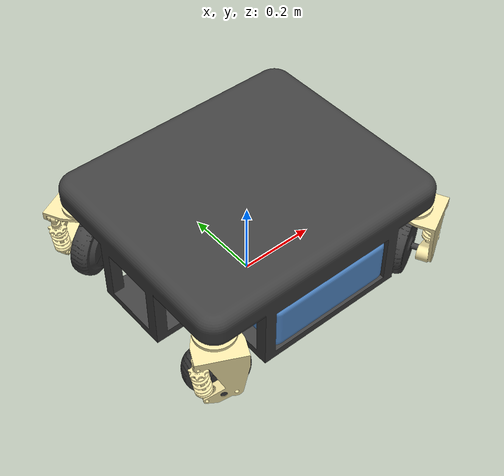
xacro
<?xml version="1.0" ?>
<robot name="robot" xmlns:xacro="http://www.ros.org/wiki/xacro">

<xacro:include filename="$(find odr_description)/urdf/materials.xacro" />
<xacro:include filename="$(find odr_description)/urdf/robot.trans" />
<link name="base_link">
  <inertial>
    <origin xyz="0.0018756816340556987 2.1921707643288239e-16 0.2351040936470249" rpy="0 0 0"/>
    <mass value="107.39644943070503"/>
    <inertia ixx="3.607903" iyy="4.642037" izz="7.236001" ixy="-0.0" iyz="0.0" ixz="-0.0"/>
  </inertial>
  <visual>
    <origin xyz="0 0 0" rpy="0 0 0"/>
    <geometry>
      <mesh filename="package://odr_description/meshes/base_link.stl" scale="0.001 0.001 0.001"/>
    </geometry>
    <material name="opaque646464"/>
  </visual>
  <collision>
    <origin xyz="0 0 0" rpy="0 0 0"/>
    <geometry>
      <mesh filename="package://odr_description/meshes/base_link.stl" scale="0.001 0.001 0.001"/>
    </geometry>
  </collision>
</link>

<link name="box_link_1">
  <inertial>
    <origin xyz="-3.183659442324016e-07 2.6558741573531935e-16 0.06500026536221601" rpy="0 0 0"/>
    <mass value="205.3820269105189"/>
    <inertia ixx="6.377362" iyy="2.228738" izz="8.038712" ixy="0.0" iyz="0.0" ixz="0.0"/>
  </inertial>
  <visual>
    <origin xyz="-0.001876 -0.0 -0.095027" rpy="0 0 0"/>
    <geometry>
      <mesh filename="package://odr_description/meshes/box_link_1.stl" scale="0.001 0.001 0.001"/>
    </geometry>
    <material name="aluminum_anodized_rough_blue"/>
  </visual>
  <collision>
    <origin xyz="-0.001876 -0.0 -0.095027" rpy="0 0 0"/>
    <geometry>
      <mesh filename="package://odr_description/meshes/box_link_1.stl" scale="0.001 0.001 0.001"/>
    </geometry>
  </collision>
</link>

<link name="rl_steer_link_1">
  <inertial>
    <origin xyz="0.017949992237069723 -0.03149760016061476 -0.05340513278771522" rpy="0 0 0"/>
    <mass value="6.70150907947744"/>
    <inertia ixx="0.025597" iyy="0.024943" izz="0.014158" ixy="-3.4e-05" iyz="-0.005322" ixz="0.002464"/>
  </inertial>
  <visual>
    <origin xyz="-0.301876 0.25 -0.225027" rpy="0 0 0"/>
    <geometry>
      <mesh filename="package://odr_description/meshes/rl_steer_link_1.stl" scale="0.001 0.001 0.001"/>
    </geometry>
    <material name="gold_polished"/>
  </visual>
  <collision>
    <origin xyz="-0.301876 0.25 -0.225027" rpy="0 0 0"/>
    <geometry>
      <mesh filename="package://odr_description/meshes/rl_steer_link_1.stl" scale="0.001 0.001 0.001"/>
    </geometry>
  </collision>
</link>

<link name="rl_wheel_link_1">
  <inertial>
    <origin xyz="-0.035691014862614 0.07255103884111336 -7.7622462762994e-09" rpy="0 0 0"/>
    <mass value="0.890961151766173"/>
    <inertia ixx="0.001677" iyy="0.002311" izz="0.001474" ixy="-0.000412" iyz="-0.0" ixz="0.0"/>
  </inertial>
  <visual>
    <origin xyz="-0.328632 0.311506 -0.085675" rpy="0 0 0"/>
    <geometry>
      <mesh filename="package://odr_description/meshes/rl_wheel_link_1.stl" scale="0.001 0.001 0.001"/>
    </geometry>
    <material name="opaque646464"/>
  </visual>
  <collision>
    <origin xyz="-0.328632 0.311506 -0.085675" rpy="0 0 0"/>
    <geometry>
      <mesh filename="package://odr_description/meshes/rl_wheel_link_1.stl" scale="0.001 0.001 0.001"/>
    </geometry>
  </collision>
</link>

<link name="rr_steer_link_1">
  <inertial>
    <origin xyz="0.017949989515991638 0.031497601074725046 -0.05340513223400098" rpy="0 0 0"/>
    <mass value="6.701508701488686"/>
    <inertia ixx="0.025597" iyy="0.024943" izz="0.014158" ixy="3.4e-05" iyz="0.005322" ixz="0.002464"/>
  </inertial>
  <visual>
    <origin xyz="-0.301876 -0.25 -0.225027" rpy="0 0 0"/>
    <geometry>
      <mesh filename="package://odr_description/meshes/rr_steer_link_1.stl" scale="0.001 0.001 0.001"/>
    </geometry>
    <material name="gold_polished"/>
  </visual>
  <collision>
    <origin xyz="-0.301876 -0.25 -0.225027" rpy="0 0 0"/>
    <geometry>
      <mesh filename="package://odr_description/meshes/rr_steer_link_1.stl" scale="0.001 0.001 0.001"/>
    </geometry>
  </collision>
</link>

<link name="rr_wheel_link_1">
  <inertial>
    <origin xyz="-0.03569192582171643 -0.07255173512706706 6.255729863013926e-07" rpy="0 0 0"/>
    <mass value="0.8909829863284214"/>
    <inertia ixx="0.001677" iyy="0.002311" izz="0.001474" ixy="0.000412" iyz="0.0" ixz="0.0"/>
  </inertial>
  <visual>
    <origin xyz="-0.328632 -0.311506 -0.085675" rpy="0 0 0"/>
    <geometry>
      <mesh filename="package://odr_description/meshes/rr_wheel_link_1.stl" scale="0.001 0.001 0.001"/>
    </geometry>
    <material name="opaque646464"/>
  </visual>
  <collision>
    <origin xyz="-0.328632 -0.311506 -0.085675" rpy="0 0 0"/>
    <geometry>
      <mesh filename="package://odr_description/meshes/rr_wheel_link_1.stl" scale="0.001 0.001 0.001"/>
    </geometry>
  </collision>
</link>

<link name="fl_steer_link_1">
  <inertial>
    <origin xyz="-0.017950629679047925 -0.031497600293579286 -0.053405129451175926" rpy="0 0 0"/>
    <mass value="6.701509274996756"/>
    <inertia ixx="0.025597" iyy="0.024943" izz="0.014158" ixy="3.4e-05" iyz="-0.005322" ixz="-0.002464"/>
  </inertial>
  <visual>
    <origin xyz="0.298124 0.25 -0.225027" rpy="0 0 0"/>
    <geometry>
      <mesh filename="package://odr_description/meshes/fl_steer_link_1.stl" scale="0.001 0.001 0.001"/>
    </geometry>
    <material name="gold_polished"/>
  </visual>
  <collision>
    <origin xyz="0.298124 0.25 -0.225027" rpy="0 0 0"/>
    <geometry>
      <mesh filename="package://odr_description/meshes/fl_steer_link_1.stl" scale="0.001 0.001 0.001"/>
    </geometry>
  </collision>
</link>

<link name="fl_wheel_link_1">
  <inertial>
    <origin xyz="0.035689899182342055 0.07255204073947369 4.805269448182603e-07" rpy="0 0 0"/>
    <mass value="0.8909430151240879"/>
    <inertia ixx="0.001677" iyy="0.002311" izz="0.001474" ixy="0.000412" iyz="0.0" ixz="0.0"/>
  </inertial>
  <visual>
    <origin xyz="0.32488 0.311506 -0.085675" rpy="0 0 0"/>
    <geometry>
      <mesh filename="package://odr_description/meshes/fl_wheel_link_1.stl" scale="0.001 0.001 0.001"/>
    </geometry>
    <material name="opaque646464"/>
  </visual>
  <collision>
    <origin xyz="0.32488 0.311506 -0.085675" rpy="0 0 0"/>
    <geometry>
      <mesh filename="package://odr_description/meshes/fl_wheel_link_1.stl" scale="0.001 0.001 0.001"/>
    </geometry>
  </collision>
</link>

<link name="fr_steer_link_1">
  <inertial>
    <origin xyz="-0.017950627040835276 0.03149760048462197 -0.05340513234215105" rpy="0 0 0"/>
    <mass value="6.701508835538764"/>
    <inertia ixx="0.025597" iyy="0.024943" izz="0.014158" ixy="-3.4e-05" iyz="0.005322" ixz="-0.002464"/>
  </inertial>
  <visual>
    <origin xyz="0.298124 -0.25 -0.225027" rpy="0 0 0"/>
    <geometry>
      <mesh filename="package://odr_description/meshes/fr_steer_link_1.stl" scale="0.001 0.001 0.001"/>
    </geometry>
    <material name="gold_polished"/>
  </visual>
  <collision>
    <origin xyz="0.298124 -0.25 -0.225027" rpy="0 0 0"/>
    <geometry>
      <mesh filename="package://odr_description/meshes/fr_steer_link_1.stl" scale="0.001 0.001 0.001"/>
    </geometry>
  </collision>
</link>

<link name="fr_wheel_link_1">
  <inertial>
    <origin xyz="0.03568940369460033 -0.07255126082019925 5.088897273575199e-07" rpy="0 0 0"/>
    <mass value="0.8909463005732775"/>
    <inertia ixx="0.001677" iyy="0.002311" izz="0.001474" ixy="-0.000412" iyz="0.0" ixz="-0.0"/>
  </inertial>
  <visual>
    <origin xyz="0.32488 -0.311506 -0.085675" rpy="0 0 0"/>
    <geometry>
      <mesh filename="package://odr_description/meshes/fr_wheel_link_1.stl" scale="0.001 0.001 0.001"/>
    </geometry>
    <material name="opaque646464"/>
  </visual>
  <collision>
    <origin xyz="0.32488 -0.311506 -0.085675" rpy="0 0 0"/>
    <geometry>
      <mesh filename="package://odr_description/meshes/fr_wheel_link_1.stl" scale="0.001 0.001 0.001"/>
    </geometry>
  </collision>
</link>

<joint name="box_joint" type="fixed">
  <origin xyz="0.001876 0.0 0.095027" rpy="0 0 0"/>
  <parent link="base_link"/>
  <child link="box_link_1"/>
</joint>

<joint name="rl_steer_joint" type="continuous">
  <origin xyz="0.301876 -0.25 0.225027" rpy="0 0 0"/>
  <parent link="base_link"/>
  <child link="rl_steer_link_1"/>
  <axis xyz="-0.0 -0.0 -1.0"/>
</joint>

<joint name="rl_wheel_joint" type="continuous">
  <origin xyz="0.026756 -0.061506 -0.139352" rpy="0 0 0"/>
  <parent link="rl_steer_link_1"/>
  <child link="rl_wheel_link_1"/>
  <axis xyz="-0.441333 0.897343 0.0"/>
</joint>

<joint name="rr_steer_joint" type="continuous">
  <origin xyz="0.301876 0.25 0.225027" rpy="0 0 0"/>
  <parent link="base_link"/>
  <child link="rr_steer_link_1"/>
  <axis xyz="-0.0 -0.0 -1.0"/>
</joint>

<joint name="rr_wheel_joint" type="continuous">
  <origin xyz="0.026756 0.061506 -0.139352" rpy="0 0 0"/>
  <parent link="rr_steer_link_1"/>
  <child link="rr_wheel_link_1"/>
  <axis xyz="-0.441333 -0.897343 -0.0"/>
</joint>

<joint name="fl_steer_joint" type="continuous">
  <origin xyz="-0.298124 -0.25 0.225027" rpy="0 0 0"/>
  <parent link="base_link"/>
  <child link="fl_steer_link_1"/>
  <axis xyz="-0.0 -0.0 -1.0"/>
</joint>

<joint name="fl_wheel_joint" type="continuous">
  <origin xyz="-0.026756 -0.061506 -0.139352" rpy="0 0 0"/>
  <parent link="fl_steer_link_1"/>
  <child link="fl_wheel_link_1"/>
  <axis xyz="0.441333 0.897343 0.0"/>
</joint>

<joint name="fr_steer_joint" type="continuous">
  <origin xyz="-0.298124 0.25 0.225027" rpy="0 0 0"/>
  <parent link="base_link"/>
  <child link="fr_steer_link_1"/>
  <axis xyz="-0.0 -0.0 -1.0"/>
</joint>

<joint name="fr_wheel_joint" type="continuous">
  <origin xyz="-0.026756 0.061506 -0.139352" rpy="0 0 0"/>
  <parent link="fr_steer_link_1"/>
  <child link="fr_wheel_link_1"/>
  <axis xyz="0.441333 -0.897343 -0.0"/>
</joint>

</robot>

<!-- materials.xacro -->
<robot name="robot" xmlns:xacro="http://www.ros.org/wiki/xacro" >

<material name="silver_default">
  <color rgba="0.700 0.700 0.700 1.000"/>
</material>
<material name="opaque646464">
  <color rgba="0.25098039215686274 0.25098039215686274 0.25098039215686274 1.0"/>
</material>
<material name="aluminum_anodized_rough_blue">
  <color rgba="0.34901960784313724 0.5843137254901961 0.8549019607843137 1.0"/>
</material>
<material name="gold_polished">
  <color rgba="0.9568627450980393 0.8980392156862745 0.6549019607843137 1.0"/>
</material>

</robot>
